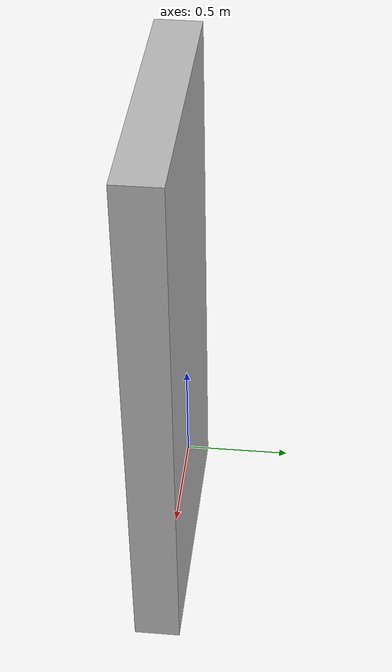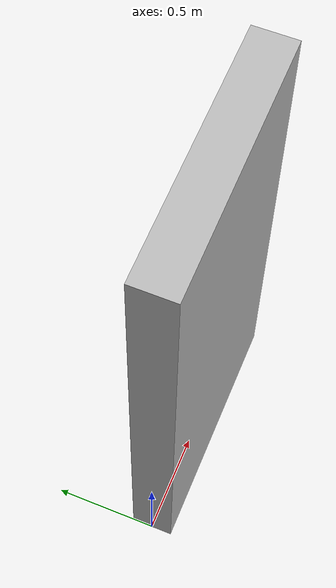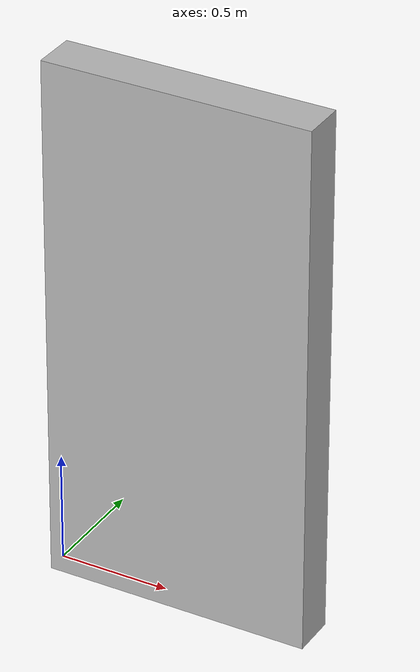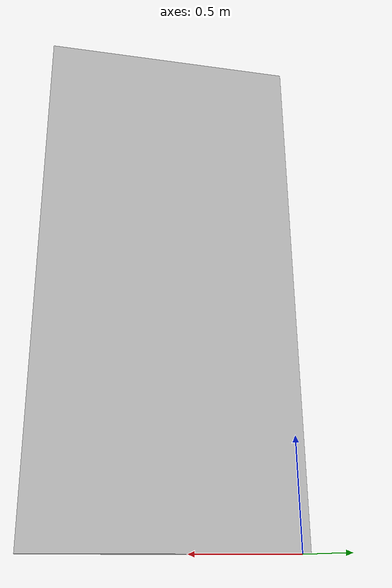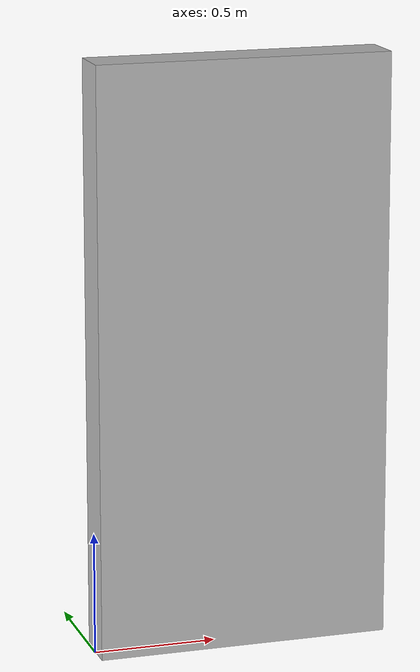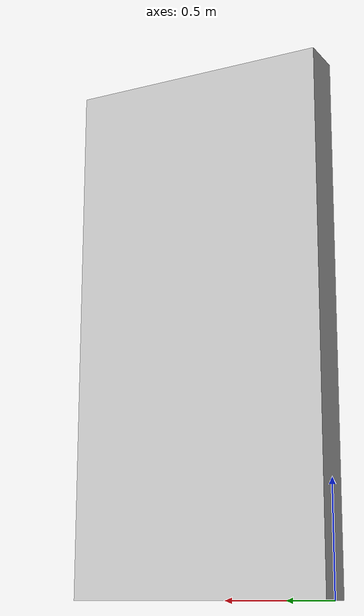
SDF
<?xml version="1.0" ?>
<sdf version="1.4">
  <model name="cutout_wall">
    <static>true</static>
    <link name="link">
      <pose>0.6 0 1.2 0 0 0</pose>
      <collision name="collision">
        <geometry>
          <box>
            <size>1.2 0.2 2.4</size>
          </box>
        </geometry>
        <surface>
          <contact>
            <collide_without_contact>true</collide_without_contact>
            <collide_without_contact_bitmask>2</collide_without_contact_bitmask>
          </contact>
        </surface>

      </collision>
      <visual name="visual">
        <cast_shadows>false</cast_shadows>
        <geometry>
          <box>
            <size>1.2 0.2 2.4</size>
          </box>
        </geometry>
        <material>
          <script>
            <uri>model://cutout_wall/materials/scripts</uri>
            <uri>model://cutout_wall/materials/textures</uri>
            <name>drc_practice/cutout_wall</name>
          </script>
        </material>
      </visual>
      <sensor name="mud_contact" type="contact">
        <always_on>true</always_on>
        <update_rate>1000</update_rate>
        <contact>
          <collision>collision</collision>
        </contact>
      </sensor>
    </link>
    <plugin name="gazebo_mud" filename="libMudPlugin.so">
      <contact_sensor_name>link/mud_contact</contact_sensor_name>
      <stiffness>0.0</stiffness>
      <damping>40.0</damping>
      <contact_surface_bitmask>2</contact_surface_bitmask>
      <link_name>drill::link</link_name>
    </plugin>
  </model>
</sdf>
